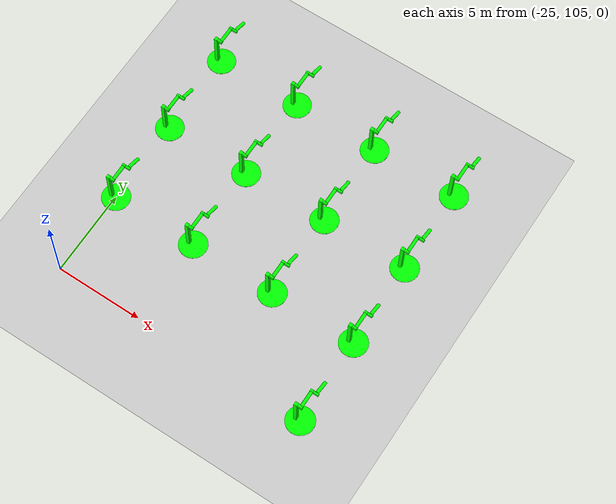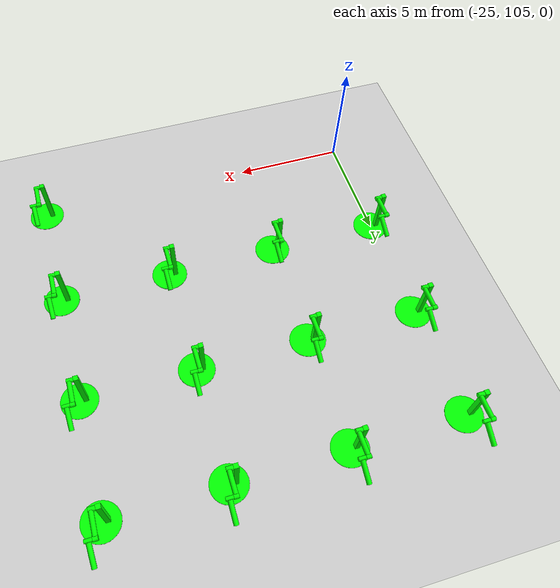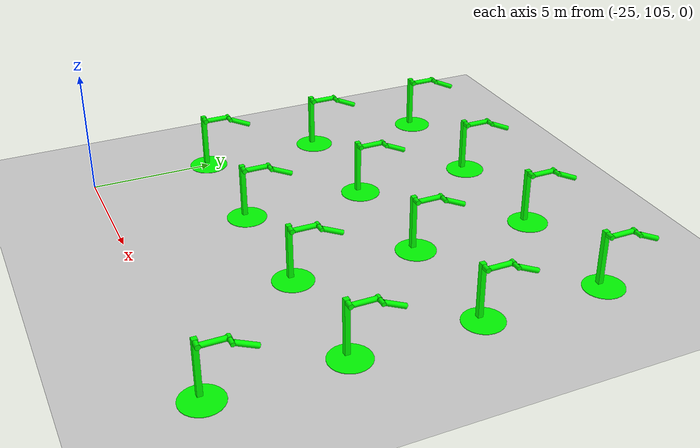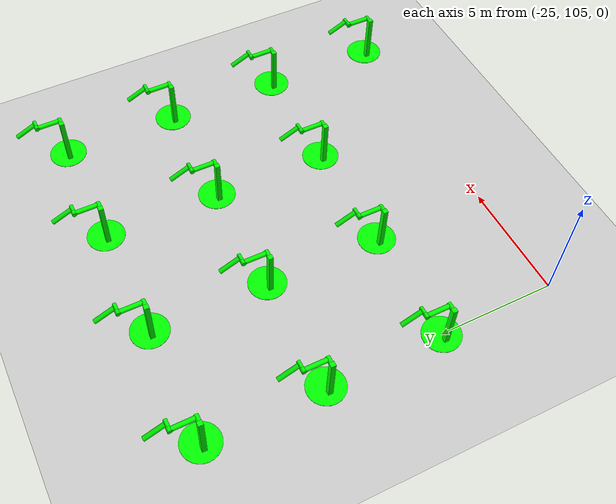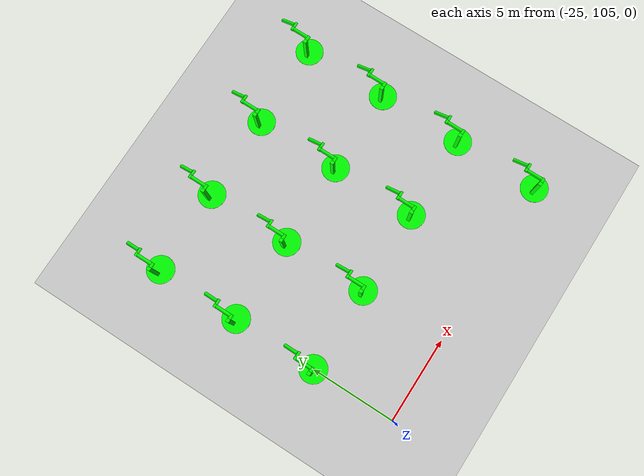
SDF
<sdf version="1.6">
 <world name="double_pendulums">
  <model name="ground_plane">
   <static>true</static>
   <link name="link">
    <collision name="collision">
     <geometry><plane><normal>0 0 1</normal><size>100 100</size></plane></geometry>
    </collision>
    <visual name="visual">
     <geometry><plane><normal>0 0 1</normal><size>100 100</size></plane></geometry>
     <material>
      <ambient>0.8 0.8 0.8 1</ambient>
      <diffuse>0.8 0.8 0.8 1</diffuse>
      <specular>0.8 0.8 0.8 1</specular>
     </material>
    </visual>
   </link>
  </model>
  <model name="dbl_pendulum_528">
   <pose>-10 105 0 0 0 0</pose>
   <link name="base">
    <inertial><mass>100</mass></inertial>
    <visual name="vis_plate_on_ground">
     <pose>0 0 0.01 0 0 0</pose>
     <geometry><cylinder><radius>0.8</radius><length>0.02</length></cylinder></geometry>
     <material><ambient>0 1 0 1</ambient><diffuse>0 1 0 1</diffuse><specular>0 1 0 1</specular></material>
    </visual>
    <visual name="vis_pole">
     <pose>-0.275 0 1.1 0 0 0</pose>
     <geometry><box><size>0.2 0.2 2.2</size></box></geometry>
     <material><ambient>0 1 0 1</ambient><diffuse>0 1 0 1</diffuse><specular>0 1 0 1</specular></material>
    </visual>
    <collision name="col_plate_on_ground">
     <pose>0 0 0.01 0 0 0</pose>
     <geometry><cylinder><radius>0.8</radius><length>0.02</length></cylinder></geometry>
    </collision>
    <collision name="col_pole">
     <pose>-0.275 0 1.1 0 0 0</pose>
     <geometry><box><size>0.2 0.2 2.2</size></box></geometry>
    </collision>
   </link>
   <link name="upper_link">
    <pose>0 0 2.1 -1.5708 0 0</pose>
    <inertial><pose>0 0 0.5 0 0 0</pose></inertial>
    <visual name="vis_upper_joint">
     <pose>-0.05 0 0 0 1.5708 0</pose>
     <geometry><cylinder><radius>0.1</radius><length>0.3</length></cylinder></geometry>
     <material><ambient>0 1 0 1</ambient><diffuse>0 1 0 1</diffuse><specular>0 1 0 1</specular></material>
    </visual>
    <visual name="vis_lower_joint">
     <pose>0 0 1.0 0 1.5708 0</pose>
     <geometry><cylinder><radius>0.1</radius><length>0.2</length></cylinder></geometry>
     <material><ambient>0 1 0 1</ambient><diffuse>0 1 0 1</diffuse><specular>0 1 0 1</specular></material>
    </visual>
    <visual name="vis_cylinder">
     <pose>0 0 0.5 0 0 0</pose>
     <geometry><cylinder><radius>0.1</radius><length>0.9</length></cylinder></geometry>
     <material><ambient>0 1 0 1</ambient><diffuse>0 1 0 1</diffuse><specular>0 1 0 1</specular></material>
    </visual>
    <collision name="col_upper_joint">
     <pose>-0.05 0 0 0 1.5708 0</pose>
     <geometry><cylinder><radius>0.1</radius><length>0.3</length></cylinder></geometry>
    </collision>
    <collision name="col_lower_joint">
     <pose>0 0 1.0 0 1.5708 0</pose>
     <geometry><cylinder><radius>0.1</radius><length>0.2</length></cylinder></geometry>
    </collision>
    <collision name="col_cylinder">
     <pose>0 0 0.5 0 0 0</pose>
     <geometry><cylinder><radius>0.1</radius><length>0.9</length></cylinder></geometry>
    </collision>
   </link>
   <link name="lower_link">
    <pose>0.25 1.0 2.1 -2 0 0</pose>
    <inertial><pose>0 0 0.5 0 0 0</pose></inertial>
    <visual name="vis_lower_joint">
     <pose>0 0 0 0 1.5708 0</pose>
     <geometry><cylinder><radius>0.08</radius><length>0.3</length></cylinder></geometry>
     <material><ambient>0 1 0 1</ambient><diffuse>0 1 0 1</diffuse><specular>0 1 0 1</specular></material>
    </visual>
    <visual name="vis_cylinder">
     <pose>0 0 0.5 0 0 0</pose>
     <geometry><cylinder><radius>0.1</radius><length>0.9</length></cylinder></geometry>
     <material><ambient>0 1 0 1</ambient><diffuse>0 1 0 1</diffuse><specular>0 1 0 1</specular></material>
    </visual>
    <collision name="col_lower_joint">
     <pose>0 0 0 0 1.5708 0</pose>
     <geometry><cylinder><radius>0.08</radius><length>0.3</length></cylinder></geometry>
    </collision>
    <collision name="col_cylinder">
     <pose>0 0 0.5 0 0 0</pose>
     <geometry><cylinder><radius>0.1</radius><length>0.9</length></cylinder></geometry>
    </collision>
   </link>
   <joint name="upper_joint" type="revolute">
    <parent>base</parent>
    <child>upper_link</child>
    <axis><xyz>1.0 0 0</xyz></axis>
   </joint>
   <joint name="lower_joint" type="revolute">
    <parent>upper_link</parent>
    <child>lower_link</child>
    <axis><xyz>1.0 0 0</xyz></axis>
   </joint>
  </model>
  <model name="dbl_pendulum_550">
   <pose>-25 110 0 0 0 0</pose>
   <link name="base">
    <inertial><mass>100</mass></inertial>
    <visual name="vis_plate_on_ground">
     <pose>0 0 0.01 0 0 0</pose>
     <geometry><cylinder><radius>0.8</radius><length>0.02</length></cylinder></geometry>
     <material><ambient>0 1 0 1</ambient><diffuse>0 1 0 1</diffuse><specular>0 1 0 1</specular></material>
    </visual>
    <visual name="vis_pole">
     <pose>-0.275 0 1.1 0 0 0</pose>
     <geometry><box><size>0.2 0.2 2.2</size></box></geometry>
     <material><ambient>0 1 0 1</ambient><diffuse>0 1 0 1</diffuse><specular>0 1 0 1</specular></material>
    </visual>
    <collision name="col_plate_on_ground">
     <pose>0 0 0.01 0 0 0</pose>
     <geometry><cylinder><radius>0.8</radius><length>0.02</length></cylinder></geometry>
    </collision>
    <collision name="col_pole">
     <pose>-0.275 0 1.1 0 0 0</pose>
     <geometry><box><size>0.2 0.2 2.2</size></box></geometry>
    </collision>
   </link>
   <link name="upper_link">
    <pose>0 0 2.1 -1.5708 0 0</pose>
    <inertial><pose>0 0 0.5 0 0 0</pose></inertial>
    <visual name="vis_upper_joint">
     <pose>-0.05 0 0 0 1.5708 0</pose>
     <geometry><cylinder><radius>0.1</radius><length>0.3</length></cylinder></geometry>
     <material><ambient>0 1 0 1</ambient><diffuse>0 1 0 1</diffuse><specular>0 1 0 1</specular></material>
    </visual>
    <visual name="vis_lower_joint">
     <pose>0 0 1.0 0 1.5708 0</pose>
     <geometry><cylinder><radius>0.1</radius><length>0.2</length></cylinder></geometry>
     <material><ambient>0 1 0 1</ambient><diffuse>0 1 0 1</diffuse><specular>0 1 0 1</specular></material>
    </visual>
    <visual name="vis_cylinder">
     <pose>0 0 0.5 0 0 0</pose>
     <geometry><cylinder><radius>0.1</radius><length>0.9</length></cylinder></geometry>
     <material><ambient>0 1 0 1</ambient><diffuse>0 1 0 1</diffuse><specular>0 1 0 1</specular></material>
    </visual>
    <collision name="col_upper_joint">
     <pose>-0.05 0 0 0 1.5708 0</pose>
     <geometry><cylinder><radius>0.1</radius><length>0.3</length></cylinder></geometry>
    </collision>
    <collision name="col_lower_joint">
     <pose>0 0 1.0 0 1.5708 0</pose>
     <geometry><cylinder><radius>0.1</radius><length>0.2</length></cylinder></geometry>
    </collision>
    <collision name="col_cylinder">
     <pose>0 0 0.5 0 0 0</pose>
     <geometry><cylinder><radius>0.1</radius><length>0.9</length></cylinder></geometry>
    </collision>
   </link>
   <link name="lower_link">
    <pose>0.25 1.0 2.1 -2 0 0</pose>
    <inertial><pose>0 0 0.5 0 0 0</pose></inertial>
    <visual name="vis_lower_joint">
     <pose>0 0 0 0 1.5708 0</pose>
     <geometry><cylinder><radius>0.08</radius><length>0.3</length></cylinder></geometry>
     <material><ambient>0 1 0 1</ambient><diffuse>0 1 0 1</diffuse><specular>0 1 0 1</specular></material>
    </visual>
    <visual name="vis_cylinder">
     <pose>0 0 0.5 0 0 0</pose>
     <geometry><cylinder><radius>0.1</radius><length>0.9</length></cylinder></geometry>
     <material><ambient>0 1 0 1</ambient><diffuse>0 1 0 1</diffuse><specular>0 1 0 1</specular></material>
    </visual>
    <collision name="col_lower_joint">
     <pose>0 0 0 0 1.5708 0</pose>
     <geometry><cylinder><radius>0.08</radius><length>0.3</length></cylinder></geometry>
    </collision>
    <collision name="col_cylinder">
     <pose>0 0 0.5 0 0 0</pose>
     <geometry><cylinder><radius>0.1</radius><length>0.9</length></cylinder></geometry>
    </collision>
   </link>
   <joint name="upper_joint" type="revolute">
    <parent>base</parent>
    <child>upper_link</child>
    <axis><xyz>1.0 0 0</xyz></axis>
   </joint>
   <joint name="lower_joint" type="revolute">
    <parent>upper_link</parent>
    <child>lower_link</child>
    <axis><xyz>1.0 0 0</xyz></axis>
   </joint>
  </model>
  <model name="dbl_pendulum_551">
   <pose>-20 110 0 0 0 0</pose>
   <link name="base">
    <inertial><mass>100</mass></inertial>
    <visual name="vis_plate_on_ground">
     <pose>0 0 0.01 0 0 0</pose>
     <geometry><cylinder><radius>0.8</radius><length>0.02</length></cylinder></geometry>
     <material><ambient>0 1 0 1</ambient><diffuse>0 1 0 1</diffuse><specular>0 1 0 1</specular></material>
    </visual>
    <visual name="vis_pole">
     <pose>-0.275 0 1.1 0 0 0</pose>
     <geometry><box><size>0.2 0.2 2.2</size></box></geometry>
     <material><ambient>0 1 0 1</ambient><diffuse>0 1 0 1</diffuse><specular>0 1 0 1</specular></material>
    </visual>
    <collision name="col_plate_on_ground">
     <pose>0 0 0.01 0 0 0</pose>
     <geometry><cylinder><radius>0.8</radius><length>0.02</length></cylinder></geometry>
    </collision>
    <collision name="col_pole">
     <pose>-0.275 0 1.1 0 0 0</pose>
     <geometry><box><size>0.2 0.2 2.2</size></box></geometry>
    </collision>
   </link>
   <link name="upper_link">
    <pose>0 0 2.1 -1.5708 0 0</pose>
    <inertial><pose>0 0 0.5 0 0 0</pose></inertial>
    <visual name="vis_upper_joint">
     <pose>-0.05 0 0 0 1.5708 0</pose>
     <geometry><cylinder><radius>0.1</radius><length>0.3</length></cylinder></geometry>
     <material><ambient>0 1 0 1</ambient><diffuse>0 1 0 1</diffuse><specular>0 1 0 1</specular></material>
    </visual>
    <visual name="vis_lower_joint">
     <pose>0 0 1.0 0 1.5708 0</pose>
     <geometry><cylinder><radius>0.1</radius><length>0.2</length></cylinder></geometry>
     <material><ambient>0 1 0 1</ambient><diffuse>0 1 0 1</diffuse><specular>0 1 0 1</specular></material>
    </visual>
    <visual name="vis_cylinder">
     <pose>0 0 0.5 0 0 0</pose>
     <geometry><cylinder><radius>0.1</radius><length>0.9</length></cylinder></geometry>
     <material><ambient>0 1 0 1</ambient><diffuse>0 1 0 1</diffuse><specular>0 1 0 1</specular></material>
    </visual>
    <collision name="col_upper_joint">
     <pose>-0.05 0 0 0 1.5708 0</pose>
     <geometry><cylinder><radius>0.1</radius><length>0.3</length></cylinder></geometry>
    </collision>
    <collision name="col_lower_joint">
     <pose>0 0 1.0 0 1.5708 0</pose>
     <geometry><cylinder><radius>0.1</radius><length>0.2</length></cylinder></geometry>
    </collision>
    <collision name="col_cylinder">
     <pose>0 0 0.5 0 0 0</pose>
     <geometry><cylinder><radius>0.1</radius><length>0.9</length></cylinder></geometry>
    </collision>
   </link>
   <link name="lower_link">
    <pose>0.25 1.0 2.1 -2 0 0</pose>
    <inertial><pose>0 0 0.5 0 0 0</pose></inertial>
    <visual name="vis_lower_joint">
     <pose>0 0 0 0 1.5708 0</pose>
     <geometry><cylinder><radius>0.08</radius><length>0.3</length></cylinder></geometry>
     <material><ambient>0 1 0 1</ambient><diffuse>0 1 0 1</diffuse><specular>0 1 0 1</specular></material>
    </visual>
    <visual name="vis_cylinder">
     <pose>0 0 0.5 0 0 0</pose>
     <geometry><cylinder><radius>0.1</radius><length>0.9</length></cylinder></geometry>
     <material><ambient>0 1 0 1</ambient><diffuse>0 1 0 1</diffuse><specular>0 1 0 1</specular></material>
    </visual>
    <collision name="col_lower_joint">
     <pose>0 0 0 0 1.5708 0</pose>
     <geometry><cylinder><radius>0.08</radius><length>0.3</length></cylinder></geometry>
    </collision>
    <collision name="col_cylinder">
     <pose>0 0 0.5 0 0 0</pose>
     <geometry><cylinder><radius>0.1</radius><length>0.9</length></cylinder></geometry>
    </collision>
   </link>
   <joint name="upper_joint" type="revolute">
    <parent>base</parent>
    <child>upper_link</child>
    <axis><xyz>1.0 0 0</xyz></axis>
   </joint>
   <joint name="lower_joint" type="revolute">
    <parent>upper_link</parent>
    <child>lower_link</child>
    <axis><xyz>1.0 0 0</xyz></axis>
   </joint>
  </model>
  <model name="dbl_pendulum_552">
   <pose>-15 110 0 0 0 0</pose>
   <link name="base">
    <inertial><mass>100</mass></inertial>
    <visual name="vis_plate_on_ground">
     <pose>0 0 0.01 0 0 0</pose>
     <geometry><cylinder><radius>0.8</radius><length>0.02</length></cylinder></geometry>
     <material><ambient>0 1 0 1</ambient><diffuse>0 1 0 1</diffuse><specular>0 1 0 1</specular></material>
    </visual>
    <visual name="vis_pole">
     <pose>-0.275 0 1.1 0 0 0</pose>
     <geometry><box><size>0.2 0.2 2.2</size></box></geometry>
     <material><ambient>0 1 0 1</ambient><diffuse>0 1 0 1</diffuse><specular>0 1 0 1</specular></material>
    </visual>
    <collision name="col_plate_on_ground">
     <pose>0 0 0.01 0 0 0</pose>
     <geometry><cylinder><radius>0.8</radius><length>0.02</length></cylinder></geometry>
    </collision>
    <collision name="col_pole">
     <pose>-0.275 0 1.1 0 0 0</pose>
     <geometry><box><size>0.2 0.2 2.2</size></box></geometry>
    </collision>
   </link>
   <link name="upper_link">
    <pose>0 0 2.1 -1.5708 0 0</pose>
    <inertial><pose>0 0 0.5 0 0 0</pose></inertial>
    <visual name="vis_upper_joint">
     <pose>-0.05 0 0 0 1.5708 0</pose>
     <geometry><cylinder><radius>0.1</radius><length>0.3</length></cylinder></geometry>
     <material><ambient>0 1 0 1</ambient><diffuse>0 1 0 1</diffuse><specular>0 1 0 1</specular></material>
    </visual>
    <visual name="vis_lower_joint">
     <pose>0 0 1.0 0 1.5708 0</pose>
     <geometry><cylinder><radius>0.1</radius><length>0.2</length></cylinder></geometry>
     <material><ambient>0 1 0 1</ambient><diffuse>0 1 0 1</diffuse><specular>0 1 0 1</specular></material>
    </visual>
    <visual name="vis_cylinder">
     <pose>0 0 0.5 0 0 0</pose>
     <geometry><cylinder><radius>0.1</radius><length>0.9</length></cylinder></geometry>
     <material><ambient>0 1 0 1</ambient><diffuse>0 1 0 1</diffuse><specular>0 1 0 1</specular></material>
    </visual>
    <collision name="col_upper_joint">
     <pose>-0.05 0 0 0 1.5708 0</pose>
     <geometry><cylinder><radius>0.1</radius><length>0.3</length></cylinder></geometry>
    </collision>
    <collision name="col_lower_joint">
     <pose>0 0 1.0 0 1.5708 0</pose>
     <geometry><cylinder><radius>0.1</radius><length>0.2</length></cylinder></geometry>
    </collision>
    <collision name="col_cylinder">
     <pose>0 0 0.5 0 0 0</pose>
     <geometry><cylinder><radius>0.1</radius><length>0.9</length></cylinder></geometry>
    </collision>
   </link>
   <link name="lower_link">
    <pose>0.25 1.0 2.1 -2 0 0</pose>
    <inertial><pose>0 0 0.5 0 0 0</pose></inertial>
    <visual name="vis_lower_joint">
     <pose>0 0 0 0 1.5708 0</pose>
     <geometry><cylinder><radius>0.08</radius><length>0.3</length></cylinder></geometry>
     <material><ambient>0 1 0 1</ambient><diffuse>0 1 0 1</diffuse><specular>0 1 0 1</specular></material>
    </visual>
    <visual name="vis_cylinder">
     <pose>0 0 0.5 0 0 0</pose>
     <geometry><cylinder><radius>0.1</radius><length>0.9</length></cylinder></geometry>
     <material><ambient>0 1 0 1</ambient><diffuse>0 1 0 1</diffuse><specular>0 1 0 1</specular></material>
    </visual>
    <collision name="col_lower_joint">
     <pose>0 0 0 0 1.5708 0</pose>
     <geometry><cylinder><radius>0.08</radius><length>0.3</length></cylinder></geometry>
    </collision>
    <collision name="col_cylinder">
     <pose>0 0 0.5 0 0 0</pose>
     <geometry><cylinder><radius>0.1</radius><length>0.9</length></cylinder></geometry>
    </collision>
   </link>
   <joint name="upper_joint" type="revolute">
    <parent>base</parent>
    <child>upper_link</child>
    <axis><xyz>1.0 0 0</xyz></axis>
   </joint>
   <joint name="lower_joint" type="revolute">
    <parent>upper_link</parent>
    <child>lower_link</child>
    <axis><xyz>1.0 0 0</xyz></axis>
   </joint>
  </model>
  <model name="dbl_pendulum_553">
   <pose>-10 110 0 0 0 0</pose>
   <link name="base">
    <inertial><mass>100</mass></inertial>
    <visual name="vis_plate_on_ground">
     <pose>0 0 0.01 0 0 0</pose>
     <geometry><cylinder><radius>0.8</radius><length>0.02</length></cylinder></geometry>
     <material><ambient>0 1 0 1</ambient><diffuse>0 1 0 1</diffuse><specular>0 1 0 1</specular></material>
    </visual>
    <visual name="vis_pole">
     <pose>-0.275 0 1.1 0 0 0</pose>
     <geometry><box><size>0.2 0.2 2.2</size></box></geometry>
     <material><ambient>0 1 0 1</ambient><diffuse>0 1 0 1</diffuse><specular>0 1 0 1</specular></material>
    </visual>
    <collision name="col_plate_on_ground">
     <pose>0 0 0.01 0 0 0</pose>
     <geometry><cylinder><radius>0.8</radius><length>0.02</length></cylinder></geometry>
    </collision>
    <collision name="col_pole">
     <pose>-0.275 0 1.1 0 0 0</pose>
     <geometry><box><size>0.2 0.2 2.2</size></box></geometry>
    </collision>
   </link>
   <link name="upper_link">
    <pose>0 0 2.1 -1.5708 0 0</pose>
    <inertial><pose>0 0 0.5 0 0 0</pose></inertial>
    <visual name="vis_upper_joint">
     <pose>-0.05 0 0 0 1.5708 0</pose>
     <geometry><cylinder><radius>0.1</radius><length>0.3</length></cylinder></geometry>
     <material><ambient>0 1 0 1</ambient><diffuse>0 1 0 1</diffuse><specular>0 1 0 1</specular></material>
    </visual>
    <visual name="vis_lower_joint">
     <pose>0 0 1.0 0 1.5708 0</pose>
     <geometry><cylinder><radius>0.1</radius><length>0.2</length></cylinder></geometry>
     <material><ambient>0 1 0 1</ambient><diffuse>0 1 0 1</diffuse><specular>0 1 0 1</specular></material>
    </visual>
    <visual name="vis_cylinder">
     <pose>0 0 0.5 0 0 0</pose>
     <geometry><cylinder><radius>0.1</radius><length>0.9</length></cylinder></geometry>
     <material><ambient>0 1 0 1</ambient><diffuse>0 1 0 1</diffuse><specular>0 1 0 1</specular></material>
    </visual>
    <collision name="col_upper_joint">
     <pose>-0.05 0 0 0 1.5708 0</pose>
     <geometry><cylinder><radius>0.1</radius><length>0.3</length></cylinder></geometry>
    </collision>
    <collision name="col_lower_joint">
     <pose>0 0 1.0 0 1.5708 0</pose>
     <geometry><cylinder><radius>0.1</radius><length>0.2</length></cylinder></geometry>
    </collision>
    <collision name="col_cylinder">
     <pose>0 0 0.5 0 0 0</pose>
     <geometry><cylinder><radius>0.1</radius><length>0.9</length></cylinder></geometry>
    </collision>
   </link>
   <link name="lower_link">
    <pose>0.25 1.0 2.1 -2 0 0</pose>
    <inertial><pose>0 0 0.5 0 0 0</pose></inertial>
    <visual name="vis_lower_joint">
     <pose>0 0 0 0 1.5708 0</pose>
     <geometry><cylinder><radius>0.08</radius><length>0.3</length></cylinder></geometry>
     <material><ambient>0 1 0 1</ambient><diffuse>0 1 0 1</diffuse><specular>0 1 0 1</specular></material>
    </visual>
    <visual name="vis_cylinder">
     <pose>0 0 0.5 0 0 0</pose>
     <geometry><cylinder><radius>0.1</radius><length>0.9</length></cylinder></geometry>
     <material><ambient>0 1 0 1</ambient><diffuse>0 1 0 1</diffuse><specular>0 1 0 1</specular></material>
    </visual>
    <collision name="col_lower_joint">
     <pose>0 0 0 0 1.5708 0</pose>
     <geometry><cylinder><radius>0.08</radius><length>0.3</length></cylinder></geometry>
    </collision>
    <collision name="col_cylinder">
     <pose>0 0 0.5 0 0 0</pose>
     <geometry><cylinder><radius>0.1</radius><length>0.9</length></cylinder></geometry>
    </collision>
   </link>
   <joint name="upper_joint" type="revolute">
    <parent>base</parent>
    <child>upper_link</child>
    <axis><xyz>1.0 0 0</xyz></axis>
   </joint>
   <joint name="lower_joint" type="revolute">
    <parent>upper_link</parent>
    <child>lower_link</child>
    <axis><xyz>1.0 0 0</xyz></axis>
   </joint>
  </model>
  <model name="dbl_pendulum_575">
   <pose>-25 115 0 0 0 0</pose>
   <link name="base">
    <inertial><mass>100</mass></inertial>
    <visual name="vis_plate_on_ground">
     <pose>0 0 0.01 0 0 0</pose>
     <geometry><cylinder><radius>0.8</radius><length>0.02</length></cylinder></geometry>
     <material><ambient>0 1 0 1</ambient><diffuse>0 1 0 1</diffuse><specular>0 1 0 1</specular></material>
    </visual>
    <visual name="vis_pole">
     <pose>-0.275 0 1.1 0 0 0</pose>
     <geometry><box><size>0.2 0.2 2.2</size></box></geometry>
     <material><ambient>0 1 0 1</ambient><diffuse>0 1 0 1</diffuse><specular>0 1 0 1</specular></material>
    </visual>
    <collision name="col_plate_on_ground">
     <pose>0 0 0.01 0 0 0</pose>
     <geometry><cylinder><radius>0.8</radius><length>0.02</length></cylinder></geometry>
    </collision>
    <collision name="col_pole">
     <pose>-0.275 0 1.1 0 0 0</pose>
     <geometry><box><size>0.2 0.2 2.2</size></box></geometry>
    </collision>
   </link>
   <link name="upper_link">
    <pose>0 0 2.1 -1.5708 0 0</pose>
    <inertial><pose>0 0 0.5 0 0 0</pose></inertial>
    <visual name="vis_upper_joint">
     <pose>-0.05 0 0 0 1.5708 0</pose>
     <geometry><cylinder><radius>0.1</radius><length>0.3</length></cylinder></geometry>
     <material><ambient>0 1 0 1</ambient><diffuse>0 1 0 1</diffuse><specular>0 1 0 1</specular></material>
    </visual>
    <visual name="vis_lower_joint">
     <pose>0 0 1.0 0 1.5708 0</pose>
     <geometry><cylinder><radius>0.1</radius><length>0.2</length></cylinder></geometry>
     <material><ambient>0 1 0 1</ambient><diffuse>0 1 0 1</diffuse><specular>0 1 0 1</specular></material>
    </visual>
    <visual name="vis_cylinder">
     <pose>0 0 0.5 0 0 0</pose>
     <geometry><cylinder><radius>0.1</radius><length>0.9</length></cylinder></geometry>
     <material><ambient>0 1 0 1</ambient><diffuse>0 1 0 1</diffuse><specular>0 1 0 1</specular></material>
    </visual>
    <collision name="col_upper_joint">
     <pose>-0.05 0 0 0 1.5708 0</pose>
     <geometry><cylinder><radius>0.1</radius><length>0.3</length></cylinder></geometry>
    </collision>
    <collision name="col_lower_joint">
     <pose>0 0 1.0 0 1.5708 0</pose>
     <geometry><cylinder><radius>0.1</radius><length>0.2</length></cylinder></geometry>
    </collision>
    <collision name="col_cylinder">
     <pose>0 0 0.5 0 0 0</pose>
     <geometry><cylinder><radius>0.1</radius><length>0.9</length></cylinder></geometry>
    </collision>
   </link>
   <link name="lower_link">
    <pose>0.25 1.0 2.1 -2 0 0</pose>
    <inertial><pose>0 0 0.5 0 0 0</pose></inertial>
    <visual name="vis_lower_joint">
     <pose>0 0 0 0 1.5708 0</pose>
     <geometry><cylinder><radius>0.08</radius><length>0.3</length></cylinder></geometry>
     <material><ambient>0 1 0 1</ambient><diffuse>0 1 0 1</diffuse><specular>0 1 0 1</specular></material>
    </visual>
    <visual name="vis_cylinder">
     <pose>0 0 0.5 0 0 0</pose>
     <geometry><cylinder><radius>0.1</radius><length>0.9</length></cylinder></geometry>
     <material><ambient>0 1 0 1</ambient><diffuse>0 1 0 1</diffuse><specular>0 1 0 1</specular></material>
    </visual>
    <collision name="col_lower_joint">
     <pose>0 0 0 0 1.5708 0</pose>
     <geometry><cylinder><radius>0.08</radius><length>0.3</length></cylinder></geometry>
    </collision>
    <collision name="col_cylinder">
     <pose>0 0 0.5 0 0 0</pose>
     <geometry><cylinder><radius>0.1</radius><length>0.9</length></cylinder></geometry>
    </collision>
   </link>
   <joint name="upper_joint" type="revolute">
    <parent>base</parent>
    <child>upper_link</child>
    <axis><xyz>1.0 0 0</xyz></axis>
   </joint>
   <joint name="lower_joint" type="revolute">
    <parent>upper_link</parent>
    <child>lower_link</child>
    <axis><xyz>1.0 0 0</xyz></axis>
   </joint>
  </model>
  <model name="dbl_pendulum_576">
   <pose>-20 115 0 0 0 0</pose>
   <link name="base">
    <inertial><mass>100</mass></inertial>
    <visual name="vis_plate_on_ground">
     <pose>0 0 0.01 0 0 0</pose>
     <geometry><cylinder><radius>0.8</radius><length>0.02</length></cylinder></geometry>
     <material><ambient>0 1 0 1</ambient><diffuse>0 1 0 1</diffuse><specular>0 1 0 1</specular></material>
    </visual>
    <visual name="vis_pole">
     <pose>-0.275 0 1.1 0 0 0</pose>
     <geometry><box><size>0.2 0.2 2.2</size></box></geometry>
     <material><ambient>0 1 0 1</ambient><diffuse>0 1 0 1</diffuse><specular>0 1 0 1</specular></material>
    </visual>
    <collision name="col_plate_on_ground">
     <pose>0 0 0.01 0 0 0</pose>
     <geometry><cylinder><radius>0.8</radius><length>0.02</length></cylinder></geometry>
    </collision>
    <collision name="col_pole">
     <pose>-0.275 0 1.1 0 0 0</pose>
     <geometry><box><size>0.2 0.2 2.2</size></box></geometry>
    </collision>
   </link>
   <link name="upper_link">
    <pose>0 0 2.1 -1.5708 0 0</pose>
    <inertial><pose>0 0 0.5 0 0 0</pose></inertial>
    <visual name="vis_upper_joint">
     <pose>-0.05 0 0 0 1.5708 0</pose>
     <geometry><cylinder><radius>0.1</radius><length>0.3</length></cylinder></geometry>
     <material><ambient>0 1 0 1</ambient><diffuse>0 1 0 1</diffuse><specular>0 1 0 1</specular></material>
    </visual>
    <visual name="vis_lower_joint">
     <pose>0 0 1.0 0 1.5708 0</pose>
     <geometry><cylinder><radius>0.1</radius><length>0.2</length></cylinder></geometry>
     <material><ambient>0 1 0 1</ambient><diffuse>0 1 0 1</diffuse><specular>0 1 0 1</specular></material>
    </visual>
    <visual name="vis_cylinder">
     <pose>0 0 0.5 0 0 0</pose>
     <geometry><cylinder><radius>0.1</radius><length>0.9</length></cylinder></geometry>
     <material><ambient>0 1 0 1</ambient><diffuse>0 1 0 1</diffuse><specular>0 1 0 1</specular></material>
    </visual>
    <collision name="col_upper_joint">
     <pose>-0.05 0 0 0 1.5708 0</pose>
     <geometry><cylinder><radius>0.1</radius><length>0.3</length></cylinder></geometry>
    </collision>
    <collision name="col_lower_joint">
     <pose>0 0 1.0 0 1.5708 0</pose>
     <geometry><cylinder><radius>0.1</radius><length>0.2</length></cylinder></geometry>
    </collision>
    <collision name="col_cylinder">
     <pose>0 0 0.5 0 0 0</pose>
     <geometry><cylinder><radius>0.1</radius><length>0.9</length></cylinder></geometry>
    </collision>
   </link>
   <link name="lower_link">
    <pose>0.25 1.0 2.1 -2 0 0</pose>
    <inertial><pose>0 0 0.5 0 0 0</pose></inertial>
    <visual name="vis_lower_joint">
     <pose>0 0 0 0 1.5708 0</pose>
     <geometry><cylinder><radius>0.08</radius><length>0.3</length></cylinder></geometry>
     <material><ambient>0 1 0 1</ambient><diffuse>0 1 0 1</diffuse><specular>0 1 0 1</specular></material>
    </visual>
    <visual name="vis_cylinder">
     <pose>0 0 0.5 0 0 0</pose>
     <geometry><cylinder><radius>0.1</radius><length>0.9</length></cylinder></geometry>
     <material><ambient>0 1 0 1</ambient><diffuse>0 1 0 1</diffuse><specular>0 1 0 1</specular></material>
    </visual>
    <collision name="col_lower_joint">
     <pose>0 0 0 0 1.5708 0</pose>
     <geometry><cylinder><radius>0.08</radius><length>0.3</length></cylinder></geometry>
    </collision>
    <collision name="col_cylinder">
     <pose>0 0 0.5 0 0 0</pose>
     <geometry><cylinder><radius>0.1</radius><length>0.9</length></cylinder></geometry>
    </collision>
   </link>
   <joint name="upper_joint" type="revolute">
    <parent>base</parent>
    <child>upper_link</child>
    <axis><xyz>1.0 0 0</xyz></axis>
   </joint>
   <joint name="lower_joint" type="revolute">
    <parent>upper_link</parent>
    <child>lower_link</child>
    <axis><xyz>1.0 0 0</xyz></axis>
   </joint>
  </model>
  <model name="dbl_pendulum_577">
   <pose>-15 115 0 0 0 0</pose>
   <link name="base">
    <inertial><mass>100</mass></inertial>
    <visual name="vis_plate_on_ground">
     <pose>0 0 0.01 0 0 0</pose>
     <geometry><cylinder><radius>0.8</radius><length>0.02</length></cylinder></geometry>
     <material><ambient>0 1 0 1</ambient><diffuse>0 1 0 1</diffuse><specular>0 1 0 1</specular></material>
    </visual>
    <visual name="vis_pole">
     <pose>-0.275 0 1.1 0 0 0</pose>
     <geometry><box><size>0.2 0.2 2.2</size></box></geometry>
     <material><ambient>0 1 0 1</ambient><diffuse>0 1 0 1</diffuse><specular>0 1 0 1</specular></material>
    </visual>
    <collision name="col_plate_on_ground">
     <pose>0 0 0.01 0 0 0</pose>
     <geometry><cylinder><radius>0.8</radius><length>0.02</length></cylinder></geometry>
    </collision>
    <collision name="col_pole">
     <pose>-0.275 0 1.1 0 0 0</pose>
     <geometry><box><size>0.2 0.2 2.2</size></box></geometry>
    </collision>
   </link>
   <link name="upper_link">
    <pose>0 0 2.1 -1.5708 0 0</pose>
    <inertial><pose>0 0 0.5 0 0 0</pose></inertial>
    <visual name="vis_upper_joint">
     <pose>-0.05 0 0 0 1.5708 0</pose>
     <geometry><cylinder><radius>0.1</radius><length>0.3</length></cylinder></geometry>
     <material><ambient>0 1 0 1</ambient><diffuse>0 1 0 1</diffuse><specular>0 1 0 1</specular></material>
    </visual>
    <visual name="vis_lower_joint">
     <pose>0 0 1.0 0 1.5708 0</pose>
     <geometry><cylinder><radius>0.1</radius><length>0.2</length></cylinder></geometry>
     <material><ambient>0 1 0 1</ambient><diffuse>0 1 0 1</diffuse><specular>0 1 0 1</specular></material>
    </visual>
    <visual name="vis_cylinder">
     <pose>0 0 0.5 0 0 0</pose>
     <geometry><cylinder><radius>0.1</radius><length>0.9</length></cylinder></geometry>
     <material><ambient>0 1 0 1</ambient><diffuse>0 1 0 1</diffuse><specular>0 1 0 1</specular></material>
    </visual>
    <collision name="col_upper_joint">
     <pose>-0.05 0 0 0 1.5708 0</pose>
     <geometry><cylinder><radius>0.1</radius><length>0.3</length></cylinder></geometry>
    </collision>
    <collision name="col_lower_joint">
     <pose>0 0 1.0 0 1.5708 0</pose>
     <geometry><cylinder><radius>0.1</radius><length>0.2</length></cylinder></geometry>
    </collision>
    <collision name="col_cylinder">
     <pose>0 0 0.5 0 0 0</pose>
     <geometry><cylinder><radius>0.1</radius><length>0.9</length></cylinder></geometry>
    </collision>
   </link>
   <link name="lower_link">
    <pose>0.25 1.0 2.1 -2 0 0</pose>
    <inertial><pose>0 0 0.5 0 0 0</pose></inertial>
    <visual name="vis_lower_joint">
     <pose>0 0 0 0 1.5708 0</pose>
     <geometry><cylinder><radius>0.08</radius><length>0.3</length></cylinder></geometry>
     <material><ambient>0 1 0 1</ambient><diffuse>0 1 0 1</diffuse><specular>0 1 0 1</specular></material>
    </visual>
    <visual name="vis_cylinder">
     <pose>0 0 0.5 0 0 0</pose>
     <geometry><cylinder><radius>0.1</radius><length>0.9</length></cylinder></geometry>
     <material><ambient>0 1 0 1</ambient><diffuse>0 1 0 1</diffuse><specular>0 1 0 1</specular></material>
    </visual>
    <collision name="col_lower_joint">
     <pose>0 0 0 0 1.5708 0</pose>
     <geometry><cylinder><radius>0.08</radius><length>0.3</length></cylinder></geometry>
    </collision>
    <collision name="col_cylinder">
     <pose>0 0 0.5 0 0 0</pose>
     <geometry><cylinder><radius>0.1</radius><length>0.9</length></cylinder></geometry>
    </collision>
   </link>
   <joint name="upper_joint" type="revolute">
    <parent>base</parent>
    <child>upper_link</child>
    <axis><xyz>1.0 0 0</xyz></axis>
   </joint>
   <joint name="lower_joint" type="revolute">
    <parent>upper_link</parent>
    <child>lower_link</child>
    <axis><xyz>1.0 0 0</xyz></axis>
   </joint>
  </model>
  <model name="dbl_pendulum_578">
   <pose>-10 115 0 0 0 0</pose>
   <link name="base">
    <inertial><mass>100</mass></inertial>
    <visual name="vis_plate_on_ground">
     <pose>0 0 0.01 0 0 0</pose>
     <geometry><cylinder><radius>0.8</radius><length>0.02</length></cylinder></geometry>
     <material><ambient>0 1 0 1</ambient><diffuse>0 1 0 1</diffuse><specular>0 1 0 1</specular></material>
    </visual>
    <visual name="vis_pole">
     <pose>-0.275 0 1.1 0 0 0</pose>
     <geometry><box><size>0.2 0.2 2.2</size></box></geometry>
     <material><ambient>0 1 0 1</ambient><diffuse>0 1 0 1</diffuse><specular>0 1 0 1</specular></material>
    </visual>
    <collision name="col_plate_on_ground">
     <pose>0 0 0.01 0 0 0</pose>
     <geometry><cylinder><radius>0.8</radius><length>0.02</length></cylinder></geometry>
    </collision>
    <collision name="col_pole">
     <pose>-0.275 0 1.1 0 0 0</pose>
     <geometry><box><size>0.2 0.2 2.2</size></box></geometry>
    </collision>
   </link>
   <link name="upper_link">
    <pose>0 0 2.1 -1.5708 0 0</pose>
    <inertial><pose>0 0 0.5 0 0 0</pose></inertial>
    <visual name="vis_upper_joint">
     <pose>-0.05 0 0 0 1.5708 0</pose>
     <geometry><cylinder><radius>0.1</radius><length>0.3</length></cylinder></geometry>
     <material><ambient>0 1 0 1</ambient><diffuse>0 1 0 1</diffuse><specular>0 1 0 1</specular></material>
    </visual>
    <visual name="vis_lower_joint">
     <pose>0 0 1.0 0 1.5708 0</pose>
     <geometry><cylinder><radius>0.1</radius><length>0.2</length></cylinder></geometry>
     <material><ambient>0 1 0 1</ambient><diffuse>0 1 0 1</diffuse><specular>0 1 0 1</specular></material>
    </visual>
    <visual name="vis_cylinder">
     <pose>0 0 0.5 0 0 0</pose>
     <geometry><cylinder><radius>0.1</radius><length>0.9</length></cylinder></geometry>
     <material><ambient>0 1 0 1</ambient><diffuse>0 1 0 1</diffuse><specular>0 1 0 1</specular></material>
    </visual>
    <collision name="col_upper_joint">
     <pose>-0.05 0 0 0 1.5708 0</pose>
     <geometry><cylinder><radius>0.1</radius><length>0.3</length></cylinder></geometry>
    </collision>
    <collision name="col_lower_joint">
     <pose>0 0 1.0 0 1.5708 0</pose>
     <geometry><cylinder><radius>0.1</radius><length>0.2</length></cylinder></geometry>
    </collision>
    <collision name="col_cylinder">
     <pose>0 0 0.5 0 0 0</pose>
     <geometry><cylinder><radius>0.1</radius><length>0.9</length></cylinder></geometry>
    </collision>
   </link>
   <link name="lower_link">
    <pose>0.25 1.0 2.1 -2 0 0</pose>
    <inertial><pose>0 0 0.5 0 0 0</pose></inertial>
    <visual name="vis_lower_joint">
     <pose>0 0 0 0 1.5708 0</pose>
     <geometry><cylinder><radius>0.08</radius><length>0.3</length></cylinder></geometry>
     <material><ambient>0 1 0 1</ambient><diffuse>0 1 0 1</diffuse><specular>0 1 0 1</specular></material>
    </visual>
    <visual name="vis_cylinder">
     <pose>0 0 0.5 0 0 0</pose>
     <geometry><cylinder><radius>0.1</radius><length>0.9</length></cylinder></geometry>
     <material><ambient>0 1 0 1</ambient><diffuse>0 1 0 1</diffuse><specular>0 1 0 1</specular></material>
    </visual>
    <collision name="col_lower_joint">
     <pose>0 0 0 0 1.5708 0</pose>
     <geometry><cylinder><radius>0.08</radius><length>0.3</length></cylinder></geometry>
    </collision>
    <collision name="col_cylinder">
     <pose>0 0 0.5 0 0 0</pose>
     <geometry><cylinder><radius>0.1</radius><length>0.9</length></cylinder></geometry>
    </collision>
   </link>
   <joint name="upper_joint" type="revolute">
    <parent>base</parent>
    <child>upper_link</child>
    <axis><xyz>1.0 0 0</xyz></axis>
   </joint>
   <joint name="lower_joint" type="revolute">
    <parent>upper_link</parent>
    <child>lower_link</child>
    <axis><xyz>1.0 0 0</xyz></axis>
   </joint>
  </model>
  <model name="dbl_pendulum_600">
   <pose>-25 120 0 0 0 0</pose>
   <link name="base">
    <inertial><mass>100</mass></inertial>
    <visual name="vis_plate_on_ground">
     <pose>0 0 0.01 0 0 0</pose>
     <geometry><cylinder><radius>0.8</radius><length>0.02</length></cylinder></geometry>
     <material><ambient>0 1 0 1</ambient><diffuse>0 1 0 1</diffuse><specular>0 1 0 1</specular></material>
    </visual>
    <visual name="vis_pole">
     <pose>-0.275 0 1.1 0 0 0</pose>
     <geometry><box><size>0.2 0.2 2.2</size></box></geometry>
     <material><ambient>0 1 0 1</ambient><diffuse>0 1 0 1</diffuse><specular>0 1 0 1</specular></material>
    </visual>
    <collision name="col_plate_on_ground">
     <pose>0 0 0.01 0 0 0</pose>
     <geometry><cylinder><radius>0.8</radius><length>0.02</length></cylinder></geometry>
    </collision>
    <collision name="col_pole">
     <pose>-0.275 0 1.1 0 0 0</pose>
     <geometry><box><size>0.2 0.2 2.2</size></box></geometry>
    </collision>
   </link>
   <link name="upper_link">
    <pose>0 0 2.1 -1.5708 0 0</pose>
    <inertial><pose>0 0 0.5 0 0 0</pose></inertial>
    <visual name="vis_upper_joint">
     <pose>-0.05 0 0 0 1.5708 0</pose>
     <geometry><cylinder><radius>0.1</radius><length>0.3</length></cylinder></geometry>
     <material><ambient>0 1 0 1</ambient><diffuse>0 1 0 1</diffuse><specular>0 1 0 1</specular></material>
    </visual>
    <visual name="vis_lower_joint">
     <pose>0 0 1.0 0 1.5708 0</pose>
     <geometry><cylinder><radius>0.1</radius><length>0.2</length></cylinder></geometry>
     <material><ambient>0 1 0 1</ambient><diffuse>0 1 0 1</diffuse><specular>0 1 0 1</specular></material>
    </visual>
    <visual name="vis_cylinder">
     <pose>0 0 0.5 0 0 0</pose>
     <geometry><cylinder><radius>0.1</radius><length>0.9</length></cylinder></geometry>
     <material><ambient>0 1 0 1</ambient><diffuse>0 1 0 1</diffuse><specular>0 1 0 1</specular></material>
    </visual>
    <collision name="col_upper_joint">
     <pose>-0.05 0 0 0 1.5708 0</pose>
     <geometry><cylinder><radius>0.1</radius><length>0.3</length></cylinder></geometry>
    </collision>
    <collision name="col_lower_joint">
     <pose>0 0 1.0 0 1.5708 0</pose>
     <geometry><cylinder><radius>0.1</radius><length>0.2</length></cylinder></geometry>
    </collision>
    <collision name="col_cylinder">
     <pose>0 0 0.5 0 0 0</pose>
     <geometry><cylinder><radius>0.1</radius><length>0.9</length></cylinder></geometry>
    </collision>
   </link>
   <link name="lower_link">
    <pose>0.25 1.0 2.1 -2 0 0</pose>
    <inertial><pose>0 0 0.5 0 0 0</pose></inertial>
    <visual name="vis_lower_joint">
     <pose>0 0 0 0 1.5708 0</pose>
     <geometry><cylinder><radius>0.08</radius><length>0.3</length></cylinder></geometry>
     <material><ambient>0 1 0 1</ambient><diffuse>0 1 0 1</diffuse><specular>0 1 0 1</specular></material>
    </visual>
    <visual name="vis_cylinder">
     <pose>0 0 0.5 0 0 0</pose>
     <geometry><cylinder><radius>0.1</radius><length>0.9</length></cylinder></geometry>
     <material><ambient>0 1 0 1</ambient><diffuse>0 1 0 1</diffuse><specular>0 1 0 1</specular></material>
    </visual>
    <collision name="col_lower_joint">
     <pose>0 0 0 0 1.5708 0</pose>
     <geometry><cylinder><radius>0.08</radius><length>0.3</length></cylinder></geometry>
    </collision>
    <collision name="col_cylinder">
     <pose>0 0 0.5 0 0 0</pose>
     <geometry><cylinder><radius>0.1</radius><length>0.9</length></cylinder></geometry>
    </collision>
   </link>
   <joint name="upper_joint" type="revolute">
    <parent>base</parent>
    <child>upper_link</child>
    <axis><xyz>1.0 0 0</xyz></axis>
   </joint>
   <joint name="lower_joint" type="revolute">
    <parent>upper_link</parent>
    <child>lower_link</child>
    <axis><xyz>1.0 0 0</xyz></axis>
   </joint>
  </model>
  <model name="dbl_pendulum_601">
   <pose>-20 120 0 0 0 0</pose>
   <link name="base">
    <inertial><mass>100</mass></inertial>
    <visual name="vis_plate_on_ground">
     <pose>0 0 0.01 0 0 0</pose>
     <geometry><cylinder><radius>0.8</radius><length>0.02</length></cylinder></geometry>
     <material><ambient>0 1 0 1</ambient><diffuse>0 1 0 1</diffuse><specular>0 1 0 1</specular></material>
    </visual>
    <visual name="vis_pole">
     <pose>-0.275 0 1.1 0 0 0</pose>
     <geometry><box><size>0.2 0.2 2.2</size></box></geometry>
     <material><ambient>0 1 0 1</ambient><diffuse>0 1 0 1</diffuse><specular>0 1 0 1</specular></material>
    </visual>
    <collision name="col_plate_on_ground">
     <pose>0 0 0.01 0 0 0</pose>
     <geometry><cylinder><radius>0.8</radius><length>0.02</length></cylinder></geometry>
    </collision>
    <collision name="col_pole">
     <pose>-0.275 0 1.1 0 0 0</pose>
     <geometry><box><size>0.2 0.2 2.2</size></box></geometry>
    </collision>
   </link>
   <link name="upper_link">
    <pose>0 0 2.1 -1.5708 0 0</pose>
    <inertial><pose>0 0 0.5 0 0 0</pose></inertial>
    <visual name="vis_upper_joint">
     <pose>-0.05 0 0 0 1.5708 0</pose>
     <geometry><cylinder><radius>0.1</radius><length>0.3</length></cylinder></geometry>
     <material><ambient>0 1 0 1</ambient><diffuse>0 1 0 1</diffuse><specular>0 1 0 1</specular></material>
    </visual>
    <visual name="vis_lower_joint">
     <pose>0 0 1.0 0 1.5708 0</pose>
     <geometry><cylinder><radius>0.1</radius><length>0.2</length></cylinder></geometry>
     <material><ambient>0 1 0 1</ambient><diffuse>0 1 0 1</diffuse><specular>0 1 0 1</specular></material>
    </visual>
    <visual name="vis_cylinder">
     <pose>0 0 0.5 0 0 0</pose>
     <geometry><cylinder><radius>0.1</radius><length>0.9</length></cylinder></geometry>
     <material><ambient>0 1 0 1</ambient><diffuse>0 1 0 1</diffuse><specular>0 1 0 1</specular></material>
    </visual>
    <collision name="col_upper_joint">
     <pose>-0.05 0 0 0 1.5708 0</pose>
     <geometry><cylinder><radius>0.1</radius><length>0.3</length></cylinder></geometry>
    </collision>
    <collision name="col_lower_joint">
     <pose>0 0 1.0 0 1.5708 0</pose>
     <geometry><cylinder><radius>0.1</radius><length>0.2</length></cylinder></geometry>
    </collision>
    <collision name="col_cylinder">
     <pose>0 0 0.5 0 0 0</pose>
     <geometry><cylinder><radius>0.1</radius><length>0.9</length></cylinder></geometry>
    </collision>
   </link>
   <link name="lower_link">
    <pose>0.25 1.0 2.1 -2 0 0</pose>
    <inertial><pose>0 0 0.5 0 0 0</pose></inertial>
    <visual name="vis_lower_joint">
     <pose>0 0 0 0 1.5708 0</pose>
     <geometry><cylinder><radius>0.08</radius><length>0.3</length></cylinder></geometry>
     <material><ambient>0 1 0 1</ambient><diffuse>0 1 0 1</diffuse><specular>0 1 0 1</specular></material>
    </visual>
    <visual name="vis_cylinder">
     <pose>0 0 0.5 0 0 0</pose>
     <geometry><cylinder><radius>0.1</radius><length>0.9</length></cylinder></geometry>
     <material><ambient>0 1 0 1</ambient><diffuse>0 1 0 1</diffuse><specular>0 1 0 1</specular></material>
    </visual>
    <collision name="col_lower_joint">
     <pose>0 0 0 0 1.5708 0</pose>
     <geometry><cylinder><radius>0.08</radius><length>0.3</length></cylinder></geometry>
    </collision>
    <collision name="col_cylinder">
     <pose>0 0 0.5 0 0 0</pose>
     <geometry><cylinder><radius>0.1</radius><length>0.9</length></cylinder></geometry>
    </collision>
   </link>
   <joint name="upper_joint" type="revolute">
    <parent>base</parent>
    <child>upper_link</child>
    <axis><xyz>1.0 0 0</xyz></axis>
   </joint>
   <joint name="lower_joint" type="revolute">
    <parent>upper_link</parent>
    <child>lower_link</child>
    <axis><xyz>1.0 0 0</xyz></axis>
   </joint>
  </model>
  <model name="dbl_pendulum_602">
   <pose>-15 120 0 0 0 0</pose>
   <link name="base">
    <inertial><mass>100</mass></inertial>
    <visual name="vis_plate_on_ground">
     <pose>0 0 0.01 0 0 0</pose>
     <geometry><cylinder><radius>0.8</radius><length>0.02</length></cylinder></geometry>
     <material><ambient>0 1 0 1</ambient><diffuse>0 1 0 1</diffuse><specular>0 1 0 1</specular></material>
    </visual>
    <visual name="vis_pole">
     <pose>-0.275 0 1.1 0 0 0</pose>
     <geometry><box><size>0.2 0.2 2.2</size></box></geometry>
     <material><ambient>0 1 0 1</ambient><diffuse>0 1 0 1</diffuse><specular>0 1 0 1</specular></material>
    </visual>
    <collision name="col_plate_on_ground">
     <pose>0 0 0.01 0 0 0</pose>
     <geometry><cylinder><radius>0.8</radius><length>0.02</length></cylinder></geometry>
    </collision>
    <collision name="col_pole">
     <pose>-0.275 0 1.1 0 0 0</pose>
     <geometry><box><size>0.2 0.2 2.2</size></box></geometry>
    </collision>
   </link>
   <link name="upper_link">
    <pose>0 0 2.1 -1.5708 0 0</pose>
    <inertial><pose>0 0 0.5 0 0 0</pose></inertial>
    <visual name="vis_upper_joint">
     <pose>-0.05 0 0 0 1.5708 0</pose>
     <geometry><cylinder><radius>0.1</radius><length>0.3</length></cylinder></geometry>
     <material><ambient>0 1 0 1</ambient><diffuse>0 1 0 1</diffuse><specular>0 1 0 1</specular></material>
    </visual>
    <visual name="vis_lower_joint">
     <pose>0 0 1.0 0 1.5708 0</pose>
     <geometry><cylinder><radius>0.1</radius><length>0.2</length></cylinder></geometry>
     <material><ambient>0 1 0 1</ambient><diffuse>0 1 0 1</diffuse><specular>0 1 0 1</specular></material>
    </visual>
    <visual name="vis_cylinder">
     <pose>0 0 0.5 0 0 0</pose>
     <geometry><cylinder><radius>0.1</radius><length>0.9</length></cylinder></geometry>
     <material><ambient>0 1 0 1</ambient><diffuse>0 1 0 1</diffuse><specular>0 1 0 1</specular></material>
    </visual>
    <collision name="col_upper_joint">
     <pose>-0.05 0 0 0 1.5708 0</pose>
     <geometry><cylinder><radius>0.1</radius><length>0.3</length></cylinder></geometry>
    </collision>
    <collision name="col_lower_joint">
     <pose>0 0 1.0 0 1.5708 0</pose>
     <geometry><cylinder><radius>0.1</radius><length>0.2</length></cylinder></geometry>
    </collision>
    <collision name="col_cylinder">
     <pose>0 0 0.5 0 0 0</pose>
     <geometry><cylinder><radius>0.1</radius><length>0.9</length></cylinder></geometry>
    </collision>
   </link>
   <link name="lower_link">
    <pose>0.25 1.0 2.1 -2 0 0</pose>
    <inertial><pose>0 0 0.5 0 0 0</pose></inertial>
    <visual name="vis_lower_joint">
     <pose>0 0 0 0 1.5708 0</pose>
     <geometry><cylinder><radius>0.08</radius><length>0.3</length></cylinder></geometry>
     <material><ambient>0 1 0 1</ambient><diffuse>0 1 0 1</diffuse><specular>0 1 0 1</specular></material>
    </visual>
    <visual name="vis_cylinder">
     <pose>0 0 0.5 0 0 0</pose>
     <geometry><cylinder><radius>0.1</radius><length>0.9</length></cylinder></geometry>
     <material><ambient>0 1 0 1</ambient><diffuse>0 1 0 1</diffuse><specular>0 1 0 1</specular></material>
    </visual>
    <collision name="col_lower_joint">
     <pose>0 0 0 0 1.5708 0</pose>
     <geometry><cylinder><radius>0.08</radius><length>0.3</length></cylinder></geometry>
    </collision>
    <collision name="col_cylinder">
     <pose>0 0 0.5 0 0 0</pose>
     <geometry><cylinder><radius>0.1</radius><length>0.9</length></cylinder></geometry>
    </collision>
   </link>
   <joint name="upper_joint" type="revolute">
    <parent>base</parent>
    <child>upper_link</child>
    <axis><xyz>1.0 0 0</xyz></axis>
   </joint>
   <joint name="lower_joint" type="revolute">
    <parent>upper_link</parent>
    <child>lower_link</child>
    <axis><xyz>1.0 0 0</xyz></axis>
   </joint>
  </model>
  <model name="dbl_pendulum_603">
   <pose>-10 120 0 0 0 0</pose>
   <link name="base">
    <inertial><mass>100</mass></inertial>
    <visual name="vis_plate_on_ground">
     <pose>0 0 0.01 0 0 0</pose>
     <geometry><cylinder><radius>0.8</radius><length>0.02</length></cylinder></geometry>
     <material><ambient>0 1 0 1</ambient><diffuse>0 1 0 1</diffuse><specular>0 1 0 1</specular></material>
    </visual>
    <visual name="vis_pole">
     <pose>-0.275 0 1.1 0 0 0</pose>
     <geometry><box><size>0.2 0.2 2.2</size></box></geometry>
     <material><ambient>0 1 0 1</ambient><diffuse>0 1 0 1</diffuse><specular>0 1 0 1</specular></material>
    </visual>
    <collision name="col_plate_on_ground">
     <pose>0 0 0.01 0 0 0</pose>
     <geometry><cylinder><radius>0.8</radius><length>0.02</length></cylinder></geometry>
    </collision>
    <collision name="col_pole">
     <pose>-0.275 0 1.1 0 0 0</pose>
     <geometry><box><size>0.2 0.2 2.2</size></box></geometry>
    </collision>
   </link>
   <link name="upper_link">
    <pose>0 0 2.1 -1.5708 0 0</pose>
    <inertial><pose>0 0 0.5 0 0 0</pose></inertial>
    <visual name="vis_upper_joint">
     <pose>-0.05 0 0 0 1.5708 0</pose>
     <geometry><cylinder><radius>0.1</radius><length>0.3</length></cylinder></geometry>
     <material><ambient>0 1 0 1</ambient><diffuse>0 1 0 1</diffuse><specular>0 1 0 1</specular></material>
    </visual>
    <visual name="vis_lower_joint">
     <pose>0 0 1.0 0 1.5708 0</pose>
     <geometry><cylinder><radius>0.1</radius><length>0.2</length></cylinder></geometry>
     <material><ambient>0 1 0 1</ambient><diffuse>0 1 0 1</diffuse><specular>0 1 0 1</specular></material>
    </visual>
    <visual name="vis_cylinder">
     <pose>0 0 0.5 0 0 0</pose>
     <geometry><cylinder><radius>0.1</radius><length>0.9</length></cylinder></geometry>
     <material><ambient>0 1 0 1</ambient><diffuse>0 1 0 1</diffuse><specular>0 1 0 1</specular></material>
    </visual>
    <collision name="col_upper_joint">
     <pose>-0.05 0 0 0 1.5708 0</pose>
     <geometry><cylinder><radius>0.1</radius><length>0.3</length></cylinder></geometry>
    </collision>
    <collision name="col_lower_joint">
     <pose>0 0 1.0 0 1.5708 0</pose>
     <geometry><cylinder><radius>0.1</radius><length>0.2</length></cylinder></geometry>
    </collision>
    <collision name="col_cylinder">
     <pose>0 0 0.5 0 0 0</pose>
     <geometry><cylinder><radius>0.1</radius><length>0.9</length></cylinder></geometry>
    </collision>
   </link>
   <link name="lower_link">
    <pose>0.25 1.0 2.1 -2 0 0</pose>
    <inertial><pose>0 0 0.5 0 0 0</pose></inertial>
    <visual name="vis_lower_joint">
     <pose>0 0 0 0 1.5708 0</pose>
     <geometry><cylinder><radius>0.08</radius><length>0.3</length></cylinder></geometry>
     <material><ambient>0 1 0 1</ambient><diffuse>0 1 0 1</diffuse><specular>0 1 0 1</specular></material>
    </visual>
    <visual name="vis_cylinder">
     <pose>0 0 0.5 0 0 0</pose>
     <geometry><cylinder><radius>0.1</radius><length>0.9</length></cylinder></geometry>
     <material><ambient>0 1 0 1</ambient><diffuse>0 1 0 1</diffuse><specular>0 1 0 1</specular></material>
    </visual>
    <collision name="col_lower_joint">
     <pose>0 0 0 0 1.5708 0</pose>
     <geometry><cylinder><radius>0.08</radius><length>0.3</length></cylinder></geometry>
    </collision>
    <collision name="col_cylinder">
     <pose>0 0 0.5 0 0 0</pose>
     <geometry><cylinder><radius>0.1</radius><length>0.9</length></cylinder></geometry>
    </collision>
   </link>
   <joint name="upper_joint" type="revolute">
    <parent>base</parent>
    <child>upper_link</child>
    <axis><xyz>1.0 0 0</xyz></axis>
   </joint>
   <joint name="lower_joint" type="revolute">
    <parent>upper_link</parent>
    <child>lower_link</child>
    <axis><xyz>1.0 0 0</xyz></axis>
   </joint>
  </model>
 </world>
</sdf>
